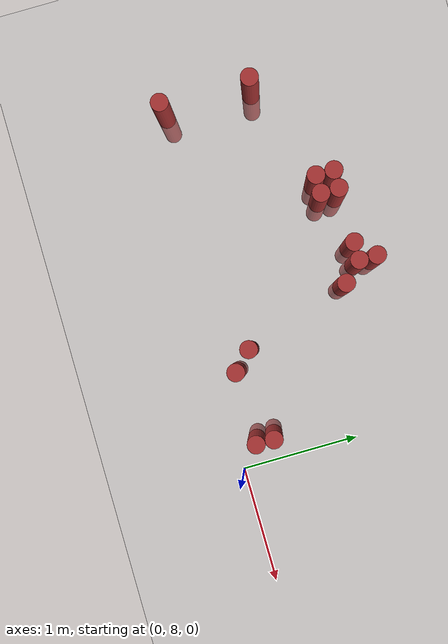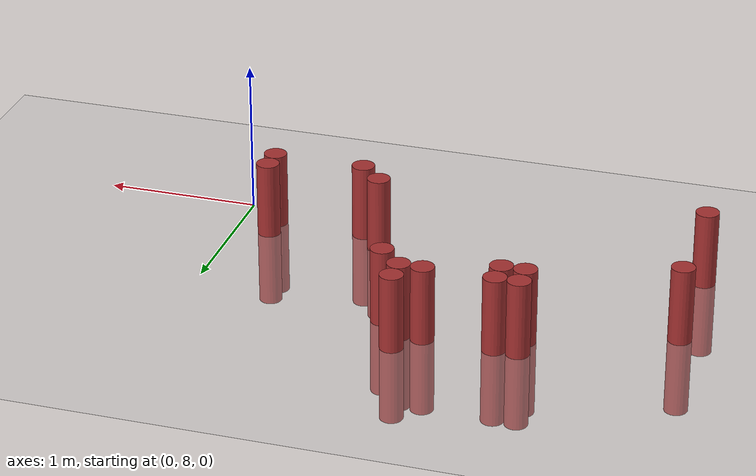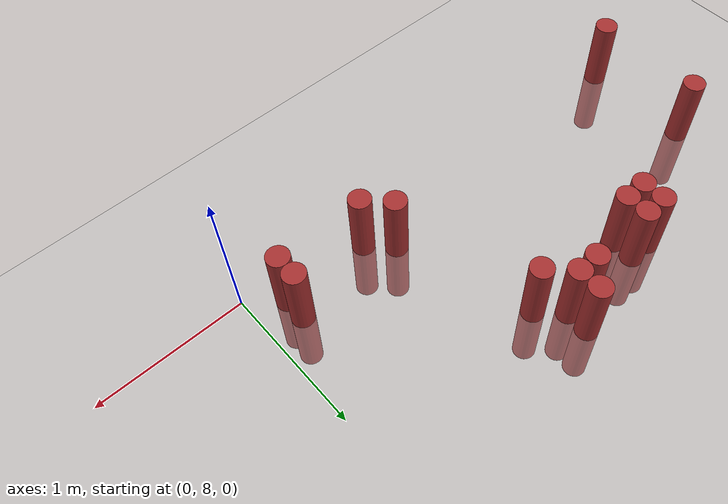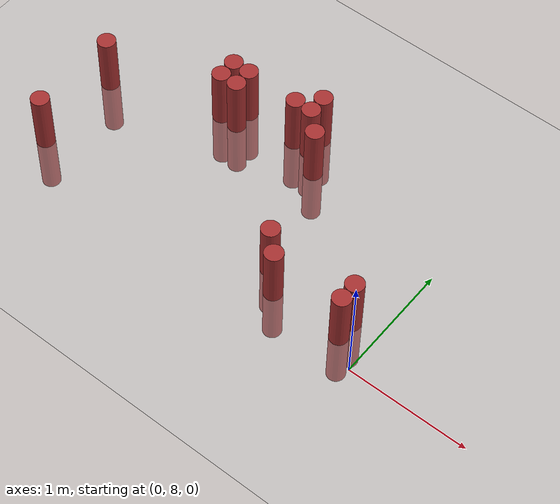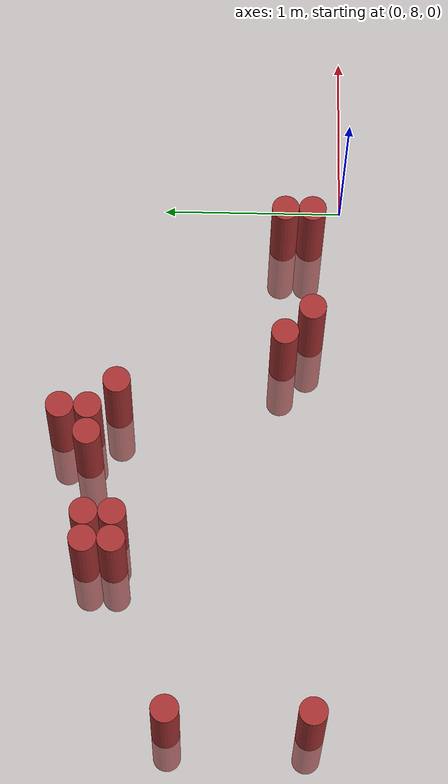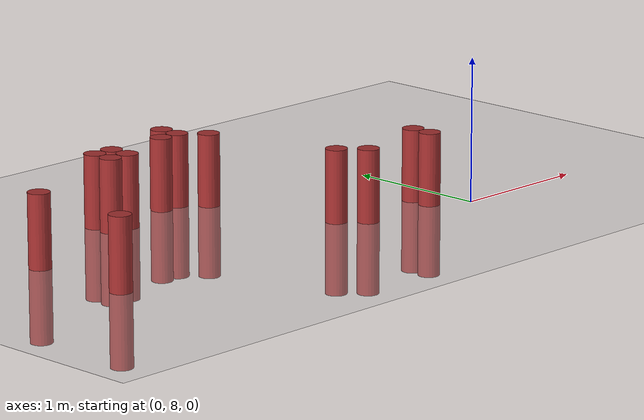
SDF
<sdf version="1.6">
 <world name="default">
  <model name="ground_plane">
   <static>1</static>
   <link name="link">
    <collision name="collision">
     <geometry><plane><normal>0 0 1</normal><size>100 100</size></plane></geometry>
     <surface><friction><ode><mu>100</mu><mu2>50</mu2></ode></friction></surface>
    </collision>
    <visual name="visual">
     <cast_shadows>0</cast_shadows>
     <geometry><plane><normal>0 0 1</normal><size>100 100</size></plane></geometry>
     <material>
      <script><uri>file://media/materials/scripts/gazebo.material</uri><name>Gazebo/Grey</name></script>
     </material>
    </visual>
   </link>
  </model>
  <model name="unit_cylinder_156">
   <static>1</static>
   <pose>-3.075000 8.175000 0.000000 0.000000 0.000000 0.000000</pose>
   <link name="link">
    <inertial>
     <mass>1</mass>
     <inertia><ixx>0.145833</ixx><ixy>0</ixy><ixz>0</ixz><iyy>0.145833</iyy><iyz>0</iyz><izz>0.125</izz></inertia>
    </inertial>
    <collision name="collision">
     <geometry><cylinder><radius>0.075000</radius><length>1</length></cylinder></geometry>
    </collision>
    <visual name="visual">
     <geometry><cylinder><radius>0.075000</radius><length>1</length></cylinder></geometry>
     <material>
      <ambient>0.648000 0.192000 0.192000 1</ambient>
      <diffuse>0.648000 0.192000 0.192000 1</diffuse>
     </material>
     <material>
      <script><name>Gazebo/Grey</name><uri>file://media/materials/scripts/gazebo.material</uri></script>
     </material>
    </visual>
   </link>
  </model>
  <model name="unit_cylinder_157">
   <static>1</static>
   <pose>-3.075000 8.925000 0.000000 0.000000 0.000000 0.000000</pose>
   <link name="link">
    <inertial>
     <mass>1</mass>
     <inertia><ixx>0.145833</ixx><ixy>0</ixy><ixz>0</ixz><iyy>0.145833</iyy><iyz>0</iyz><izz>0.125</izz></inertia>
    </inertial>
    <collision name="collision">
     <geometry><cylinder><radius>0.075000</radius><length>1</length></cylinder></geometry>
    </collision>
    <visual name="visual">
     <geometry><cylinder><radius>0.075000</radius><length>1</length></cylinder></geometry>
     <material>
      <ambient>0.648000 0.192000 0.192000 1</ambient>
      <diffuse>0.648000 0.192000 0.192000 1</diffuse>
     </material>
     <material>
      <script><name>Gazebo/Grey</name><uri>file://media/materials/scripts/gazebo.material</uri></script>
     </material>
    </visual>
   </link>
  </model>
  <model name="unit_cylinder_158">
   <static>1</static>
   <pose>-2.175000 9.225000 0.000000 0.000000 0.000000 0.000000</pose>
   <link name="link">
    <inertial>
     <mass>1</mass>
     <inertia><ixx>0.145833</ixx><ixy>0</ixy><ixz>0</ixz><iyy>0.145833</iyy><iyz>0</iyz><izz>0.125</izz></inertia>
    </inertial>
    <collision name="collision">
     <geometry><cylinder><radius>0.075000</radius><length>1</length></cylinder></geometry>
    </collision>
    <visual name="visual">
     <geometry><cylinder><radius>0.075000</radius><length>1</length></cylinder></geometry>
     <material>
      <ambient>0.648000 0.192000 0.192000 1</ambient>
      <diffuse>0.648000 0.192000 0.192000 1</diffuse>
     </material>
     <material>
      <script><name>Gazebo/Grey</name><uri>file://media/materials/scripts/gazebo.material</uri></script>
     </material>
    </visual>
   </link>
  </model>
  <model name="unit_cylinder_159">
   <static>1</static>
   <pose>-2.175000 9.375000 0.000000 0.000000 0.000000 0.000000</pose>
   <link name="link">
    <inertial>
     <mass>1</mass>
     <inertia><ixx>0.145833</ixx><ixy>0</ixy><ixz>0</ixz><iyy>0.145833</iyy><iyz>0</iyz><izz>0.125</izz></inertia>
    </inertial>
    <collision name="collision">
     <geometry><cylinder><radius>0.075000</radius><length>1</length></cylinder></geometry>
    </collision>
    <visual name="visual">
     <geometry><cylinder><radius>0.075000</radius><length>1</length></cylinder></geometry>
     <material>
      <ambient>0.648000 0.192000 0.192000 1</ambient>
      <diffuse>0.648000 0.192000 0.192000 1</diffuse>
     </material>
     <material>
      <script><name>Gazebo/Grey</name><uri>file://media/materials/scripts/gazebo.material</uri></script>
     </material>
    </visual>
   </link>
  </model>
  <model name="unit_cylinder_161">
   <static>1</static>
   <pose>-2.025000 9.225000 0.000000 0.000000 0.000000 0.000000</pose>
   <link name="link">
    <inertial>
     <mass>1</mass>
     <inertia><ixx>0.145833</ixx><ixy>0</ixy><ixz>0</ixz><iyy>0.145833</iyy><iyz>0</iyz><izz>0.125</izz></inertia>
    </inertial>
    <collision name="collision">
     <geometry><cylinder><radius>0.075000</radius><length>1</length></cylinder></geometry>
    </collision>
    <visual name="visual">
     <geometry><cylinder><radius>0.075000</radius><length>1</length></cylinder></geometry>
     <material>
      <ambient>0.648000 0.192000 0.192000 1</ambient>
      <diffuse>0.648000 0.192000 0.192000 1</diffuse>
     </material>
     <material>
      <script><name>Gazebo/Grey</name><uri>file://media/materials/scripts/gazebo.material</uri></script>
     </material>
    </visual>
   </link>
  </model>
  <model name="unit_cylinder_162">
   <static>1</static>
   <pose>-2.025000 9.375000 0.000000 0.000000 0.000000 0.000000</pose>
   <link name="link">
    <inertial>
     <mass>1</mass>
     <inertia><ixx>0.145833</ixx><ixy>0</ixy><ixz>0</ixz><iyy>0.145833</iyy><iyz>0</iyz><izz>0.125</izz></inertia>
    </inertial>
    <collision name="collision">
     <geometry><cylinder><radius>0.075000</radius><length>1</length></cylinder></geometry>
    </collision>
    <visual name="visual">
     <geometry><cylinder><radius>0.075000</radius><length>1</length></cylinder></geometry>
     <material>
      <ambient>0.648000 0.192000 0.192000 1</ambient>
      <diffuse>0.648000 0.192000 0.192000 1</diffuse>
     </material>
     <material>
      <script><name>Gazebo/Grey</name><uri>file://media/materials/scripts/gazebo.material</uri></script>
     </material>
    </visual>
   </link>
  </model>
  <model name="unit_cylinder_165">
   <static>1</static>
   <pose>-1.575000 9.375000 0.000000 0.000000 0.000000 0.000000</pose>
   <link name="link">
    <inertial>
     <mass>1</mass>
     <inertia><ixx>0.145833</ixx><ixy>0</ixy><ixz>0</ixz><iyy>0.145833</iyy><iyz>0</iyz><izz>0.125</izz></inertia>
    </inertial>
    <collision name="collision">
     <geometry><cylinder><radius>0.075000</radius><length>1</length></cylinder></geometry>
    </collision>
    <visual name="visual">
     <geometry><cylinder><radius>0.075000</radius><length>1</length></cylinder></geometry>
     <material>
      <ambient>0.648000 0.192000 0.192000 1</ambient>
      <diffuse>0.648000 0.192000 0.192000 1</diffuse>
     </material>
     <material>
      <script><name>Gazebo/Grey</name><uri>file://media/materials/scripts/gazebo.material</uri></script>
     </material>
    </visual>
   </link>
  </model>
  <model name="unit_cylinder_166">
   <static>1</static>
   <pose>-1.425000 9.375000 0.000000 0.000000 0.000000 0.000000</pose>
   <link name="link">
    <inertial>
     <mass>1</mass>
     <inertia><ixx>0.145833</ixx><ixy>0</ixy><ixz>0</ixz><iyy>0.145833</iyy><iyz>0</iyz><izz>0.125</izz></inertia>
    </inertial>
    <collision name="collision">
     <geometry><cylinder><radius>0.075000</radius><length>1</length></cylinder></geometry>
    </collision>
    <visual name="visual">
     <geometry><cylinder><radius>0.075000</radius><length>1</length></cylinder></geometry>
     <material>
      <ambient>0.648000 0.192000 0.192000 1</ambient>
      <diffuse>0.648000 0.192000 0.192000 1</diffuse>
     </material>
     <material>
      <script><name>Gazebo/Grey</name><uri>file://media/materials/scripts/gazebo.material</uri></script>
     </material>
    </visual>
   </link>
  </model>
  <model name="unit_cylinder_167">
   <static>1</static>
   <pose>-1.425000 9.525000 0.000000 0.000000 0.000000 0.000000</pose>
   <link name="link">
    <inertial>
     <mass>1</mass>
     <inertia><ixx>0.145833</ixx><ixy>0</ixy><ixz>0</ixz><iyy>0.145833</iyy><iyz>0</iyz><izz>0.125</izz></inertia>
    </inertial>
    <collision name="collision">
     <geometry><cylinder><radius>0.075000</radius><length>1</length></cylinder></geometry>
    </collision>
    <visual name="visual">
     <geometry><cylinder><radius>0.075000</radius><length>1</length></cylinder></geometry>
     <material>
      <ambient>0.648000 0.192000 0.192000 1</ambient>
      <diffuse>0.648000 0.192000 0.192000 1</diffuse>
     </material>
     <material>
      <script><name>Gazebo/Grey</name><uri>file://media/materials/scripts/gazebo.material</uri></script>
     </material>
    </visual>
   </link>
  </model>
  <model name="unit_cylinder_168">
   <static>1</static>
   <pose>-1.275000 9.225000 0.000000 0.000000 0.000000 0.000000</pose>
   <link name="link">
    <inertial>
     <mass>1</mass>
     <inertia><ixx>0.145833</ixx><ixy>0</ixy><ixz>0</ixz><iyy>0.145833</iyy><iyz>0</iyz><izz>0.125</izz></inertia>
    </inertial>
    <collision name="collision">
     <geometry><cylinder><radius>0.075000</radius><length>1</length></cylinder></geometry>
    </collision>
    <visual name="visual">
     <geometry><cylinder><radius>0.075000</radius><length>1</length></cylinder></geometry>
     <material>
      <ambient>0.648000 0.192000 0.192000 1</ambient>
      <diffuse>0.648000 0.192000 0.192000 1</diffuse>
     </material>
     <material>
      <script><name>Gazebo/Grey</name><uri>file://media/materials/scripts/gazebo.material</uri></script>
     </material>
    </visual>
   </link>
  </model>
  <model name="unit_cylinder_170">
   <static>1</static>
   <pose>-0.975000 8.325000 0.000000 0.000000 0.000000 0.000000</pose>
   <link name="link">
    <inertial>
     <mass>1</mass>
     <inertia><ixx>0.145833</ixx><ixy>0</ixy><ixz>0</ixz><iyy>0.145833</iyy><iyz>0</iyz><izz>0.125</izz></inertia>
    </inertial>
    <collision name="collision">
     <geometry><cylinder><radius>0.075000</radius><length>1</length></cylinder></geometry>
    </collision>
    <visual name="visual">
     <geometry><cylinder><radius>0.075000</radius><length>1</length></cylinder></geometry>
     <material>
      <ambient>0.648000 0.192000 0.192000 1</ambient>
      <diffuse>0.648000 0.192000 0.192000 1</diffuse>
     </material>
     <material>
      <script><name>Gazebo/Grey</name><uri>file://media/materials/scripts/gazebo.material</uri></script>
     </material>
    </visual>
   </link>
  </model>
  <model name="unit_cylinder_174">
   <static>1</static>
   <pose>-0.825000 8.175000 0.000000 0.000000 0.000000 0.000000</pose>
   <link name="link">
    <inertial>
     <mass>1</mass>
     <inertia><ixx>0.145833</ixx><ixy>0</ixy><ixz>0</ixz><iyy>0.145833</iyy><iyz>0</iyz><izz>0.125</izz></inertia>
    </inertial>
    <collision name="collision">
     <geometry><cylinder><radius>0.075000</radius><length>1</length></cylinder></geometry>
    </collision>
    <visual name="visual">
     <geometry><cylinder><radius>0.075000</radius><length>1</length></cylinder></geometry>
     <material>
      <ambient>0.648000 0.192000 0.192000 1</ambient>
      <diffuse>0.648000 0.192000 0.192000 1</diffuse>
     </material>
     <material>
      <script><name>Gazebo/Grey</name><uri>file://media/materials/scripts/gazebo.material</uri></script>
     </material>
    </visual>
   </link>
  </model>
  <model name="unit_cylinder_187">
   <static>1</static>
   <pose>-0.225000 8.175000 0.000000 0.000000 0.000000 0.000000</pose>
   <link name="link">
    <inertial>
     <mass>1</mass>
     <inertia><ixx>0.145833</ixx><ixy>0</ixy><ixz>0</ixz><iyy>0.145833</iyy><iyz>0</iyz><izz>0.125</izz></inertia>
    </inertial>
    <collision name="collision">
     <geometry><cylinder><radius>0.075000</radius><length>1</length></cylinder></geometry>
    </collision>
    <visual name="visual">
     <geometry><cylinder><radius>0.075000</radius><length>1</length></cylinder></geometry>
     <material>
      <ambient>0.648000 0.192000 0.192000 1</ambient>
      <diffuse>0.648000 0.192000 0.192000 1</diffuse>
     </material>
     <material>
      <script><name>Gazebo/Grey</name><uri>file://media/materials/scripts/gazebo.material</uri></script>
     </material>
    </visual>
   </link>
  </model>
  <model name="unit_cylinder_188">
   <static>1</static>
   <pose>-0.225000 8.325000 0.000000 0.000000 0.000000 0.000000</pose>
   <link name="link">
    <inertial>
     <mass>1</mass>
     <inertia><ixx>0.145833</ixx><ixy>0</ixy><ixz>0</ixz><iyy>0.145833</iyy><iyz>0</iyz><izz>0.125</izz></inertia>
    </inertial>
    <collision name="collision">
     <geometry><cylinder><radius>0.075000</radius><length>1</length></cylinder></geometry>
    </collision>
    <visual name="visual">
     <geometry><cylinder><radius>0.075000</radius><length>1</length></cylinder></geometry>
     <material>
      <ambient>0.648000 0.192000 0.192000 1</ambient>
      <diffuse>0.648000 0.192000 0.192000 1</diffuse>
     </material>
     <material>
      <script><name>Gazebo/Grey</name><uri>file://media/materials/scripts/gazebo.material</uri></script>
     </material>
    </visual>
   </link>
  </model>
 </world>
</sdf>
